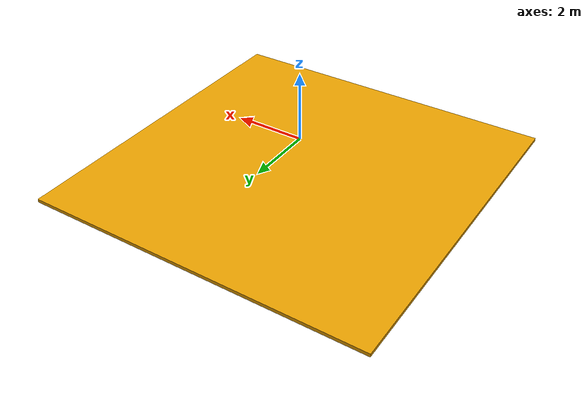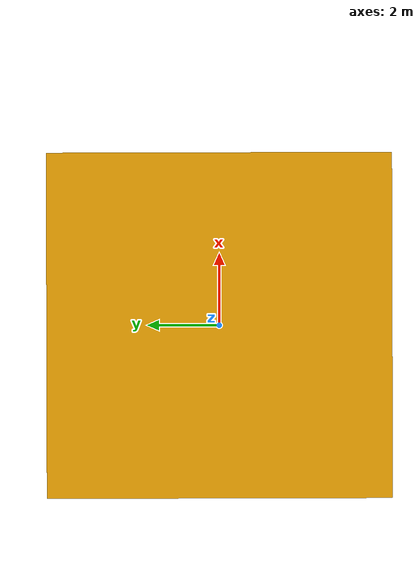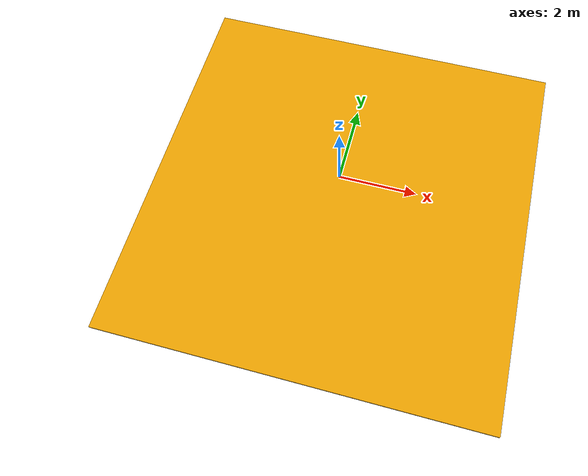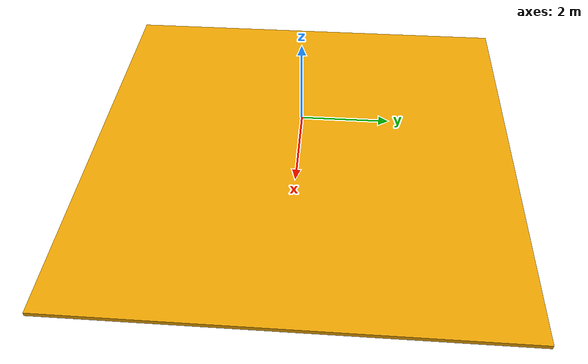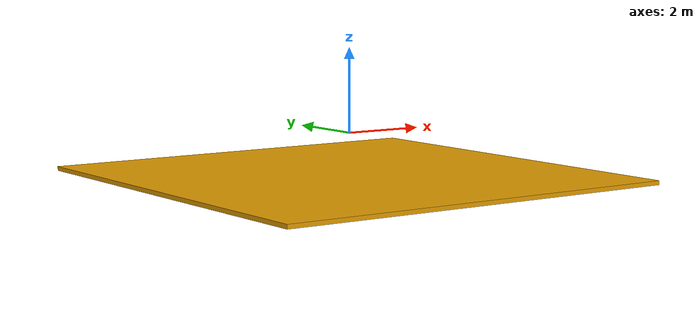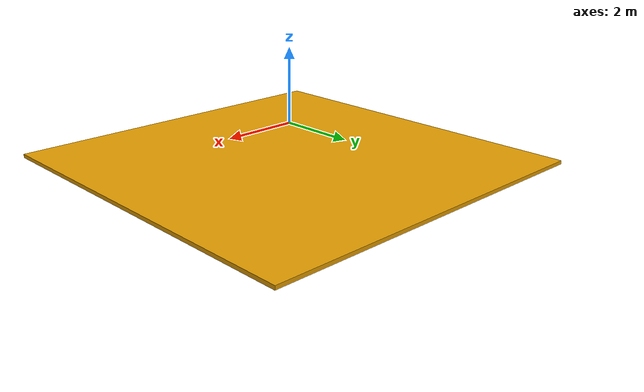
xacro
<?xml version="1.0"?>
<robot name="iai_kitchen" xmlns:xacro="http://ros.org/wiki/xacro">
          <link name="floor">
            <collision>
              <origin xyz="0 0 -1.0" rpy="0 0 0" />
              <geometry>
                <box size="10.1 10.1 .1" />
              </geometry>
            </collision>
            <visual>
              <origin xyz="0 0 -1.0" rpy="0 0 0" />
              <geometry>
                <box size="10.1 10.1 .1" />
              </geometry>
            </visual>
          </link>
  <gazebo>
    <static>true</static>
  </gazebo>
</robot>
